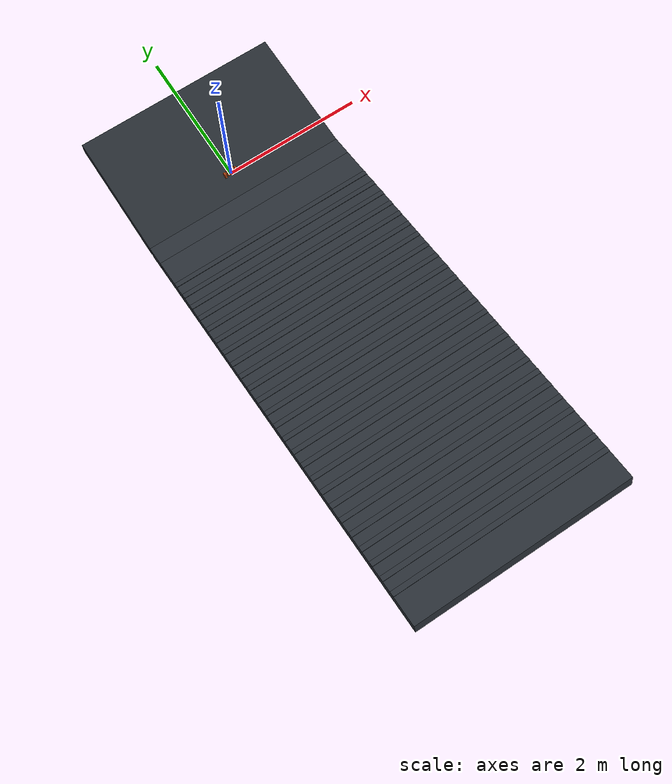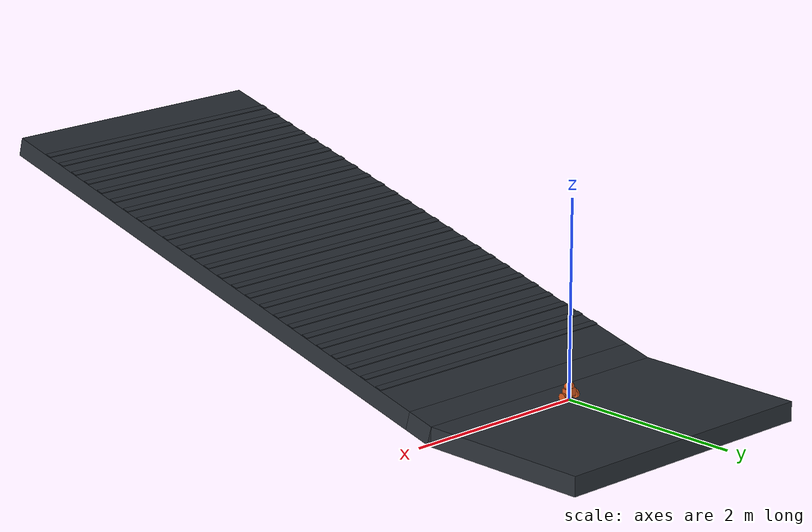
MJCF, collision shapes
<mujoco model="Stage4B rtrain_067_p15p0">
  <compiler angle="radian" meshdir="../../../../assets/upstream_local" />
  <option timestep="0.001" integrator="implicitfast" gravity="0 0 -9.81" />
  <statistic center="0 0 0.05" extent="0.28" />
  <default>
    <default class="visual">
      <geom contype="0" conaffinity="0" group="2" />
    </default>
    <default class="collision">
      <geom group="3" rgba="0.85 0.35 0.12 0.25" solref="0.005 1" solimp="0.9 0.95 0.001" />
    </default>
  </default>
  <asset>
    <texture name="ground_tex" type="2d" builtin="checker" rgb1="0.22 0.25 0.28" rgb2="0.12 0.14 0.16" width="256" height="256" />
    <material name="ground_mat" texture="ground_tex" texrepeat="4 4" reflectance="0.15" />
    <mesh name="main_frame_mesh" file="main_frame.stl" scale="0.001 0.001 0.001" />
    <mesh name="wheel_base_mesh" file="wheel_base.stl" scale="0.001 0.001 0.001" />
    <mesh name="cover_mesh" file="cover.stl" scale="0.001 0.001 0.001" />
    <mesh name="motor_left_mesh" file="motor_left.stl" scale="0.001 0.001 0.001" />
    <mesh name="motor_right_mesh" file="motor_right.stl" scale="0.001 0.001 0.001" />
    <mesh name="mc33926_mesh" file="mc33926.stl" scale="0.001 0.001 0.001" />
    <mesh name="wheel_mesh" file="wheel.stl" scale="0.001 0.001 0.001" />
    <mesh name="adapter_left_mesh" file="adapter_left.stl" scale="0.001 0.001 0.001" />
    <mesh name="adapter_right_mesh" file="adapter_right.stl" scale="0.001 0.001 0.001" />
  </asset>
  <worldbody>
    <light pos="0 -0.5 0.8" dir="0 0.6 -1" diffuse="0.8 0.8 0.8" />
    <geom name="terrain_flat" type="box" pos="0 0.575 -0.1" size="1.5 0.925 0.1" material="ground_mat" friction="0.96340332 0.005 0.0001" condim="3" />
    <geom name="terrain_transition" type="box" pos="0 -0.520770778454 -0.0577697258635" euler="-0.261799387799 0 0" size="1.5 0.15 0.1" material="ground_mat" friction="0.96340332 0.005 0.0001" condim="3" />
    <geom name="terrain_constant_grade" type="box" pos="0 -3.56343713126 0.757510266209" euler="-0.261799387799 0 0" size="1.5 3 0.1" material="ground_mat" friction="0.96340332 0.005 0.0001" condim="3" />
    <geom name="terrain_rough_00" type="box" pos="0 -1.0732920456 0.198414815964" euler="-0.261799387799 0 0" size="1.5 0.0360339230765 0.00445223848454" material="ground_mat" friction="0.96340332 0.005 0.0001" condim="3" />
    <geom name="terrain_rough_01" type="box" pos="0 -1.27901929222 0.253539265555" euler="-0.261799387799 0 0" size="1.5 0.0360339230765 0.00445223848454" material="ground_mat" friction="0.96340332 0.005 0.0001" condim="3" />
    <geom name="terrain_rough_02" type="box" pos="0 -1.48474653883 0.308663715146" euler="-0.261799387799 0 0" size="1.5 0.0360339230765 0.00445223848454" material="ground_mat" friction="0.96340332 0.005 0.0001" condim="3" />
    <geom name="terrain_rough_03" type="box" pos="0 -1.69047378544 0.363788164737" euler="-0.261799387799 0 0" size="1.5 0.0360339230765 0.00445223848454" material="ground_mat" friction="0.96340332 0.005 0.0001" condim="3" />
    <geom name="terrain_rough_04" type="box" pos="0 -1.89620103206 0.418912614328" euler="-0.261799387799 0 0" size="1.5 0.0360339230765 0.00445223848454" material="ground_mat" friction="0.96340332 0.005 0.0001" condim="3" />
    <geom name="terrain_rough_05" type="box" pos="0 -2.10192827867 0.474037063919" euler="-0.261799387799 0 0" size="1.5 0.0360339230765 0.00445223848454" material="ground_mat" friction="0.96340332 0.005 0.0001" condim="3" />
    <geom name="terrain_rough_06" type="box" pos="0 -2.30765552528 0.529161513511" euler="-0.261799387799 0 0" size="1.5 0.0360339230765 0.00445223848454" material="ground_mat" friction="0.96340332 0.005 0.0001" condim="3" />
    <geom name="terrain_rough_07" type="box" pos="0 -2.5133827719 0.584285963102" euler="-0.261799387799 0 0" size="1.5 0.0360339230765 0.00445223848454" material="ground_mat" friction="0.96340332 0.005 0.0001" condim="3" />
    <geom name="terrain_rough_08" type="box" pos="0 -2.71911001851 0.639410412693" euler="-0.261799387799 0 0" size="1.5 0.0360339230765 0.00445223848454" material="ground_mat" friction="0.96340332 0.005 0.0001" condim="3" />
    <geom name="terrain_rough_09" type="box" pos="0 -2.92483726512 0.694534862284" euler="-0.261799387799 0 0" size="1.5 0.0360339230765 0.00445223848454" material="ground_mat" friction="0.96340332 0.005 0.0001" condim="3" />
    <geom name="terrain_rough_10" type="box" pos="0 -3.13056451174 0.749659311875" euler="-0.261799387799 0 0" size="1.5 0.0360339230765 0.00445223848454" material="ground_mat" friction="0.96340332 0.005 0.0001" condim="3" />
    <geom name="terrain_rough_11" type="box" pos="0 -3.33629175835 0.804783761466" euler="-0.261799387799 0 0" size="1.5 0.0360339230765 0.00445223848454" material="ground_mat" friction="0.96340332 0.005 0.0001" condim="3" />
    <geom name="terrain_rough_12" type="box" pos="0 -3.54201900496 0.859908211057" euler="-0.261799387799 0 0" size="1.5 0.0360339230765 0.00445223848454" material="ground_mat" friction="0.96340332 0.005 0.0001" condim="3" />
    <geom name="terrain_rough_13" type="box" pos="0 -3.74774625158 0.915032660648" euler="-0.261799387799 0 0" size="1.5 0.0360339230765 0.00445223848454" material="ground_mat" friction="0.96340332 0.005 0.0001" condim="3" />
    <geom name="terrain_rough_14" type="box" pos="0 -3.95347349819 0.970157110239" euler="-0.261799387799 0 0" size="1.5 0.0360339230765 0.00445223848454" material="ground_mat" friction="0.96340332 0.005 0.0001" condim="3" />
    <geom name="terrain_rough_15" type="box" pos="0 -4.1592007448 1.02528155983" euler="-0.261799387799 0 0" size="1.5 0.0360339230765 0.00445223848454" material="ground_mat" friction="0.96340332 0.005 0.0001" condim="3" />
    <geom name="terrain_rough_16" type="box" pos="0 -4.36492799142 1.08040600942" euler="-0.261799387799 0 0" size="1.5 0.0360339230765 0.00445223848454" material="ground_mat" friction="0.96340332 0.005 0.0001" condim="3" />
    <geom name="terrain_rough_17" type="box" pos="0 -4.57065523803 1.13553045901" euler="-0.261799387799 0 0" size="1.5 0.0360339230765 0.00445223848454" material="ground_mat" friction="0.96340332 0.005 0.0001" condim="3" />
    <geom name="terrain_rough_18" type="box" pos="0 -4.77638248464 1.1906549086" euler="-0.261799387799 0 0" size="1.5 0.0360339230765 0.00445223848454" material="ground_mat" friction="0.96340332 0.005 0.0001" condim="3" />
    <geom name="terrain_rough_19" type="box" pos="0 -4.98210973126 1.24577935819" euler="-0.261799387799 0 0" size="1.5 0.0360339230765 0.00445223848454" material="ground_mat" friction="0.96340332 0.005 0.0001" condim="3" />
    <geom name="terrain_rough_20" type="box" pos="0 -5.18783697787 1.30090380779" euler="-0.261799387799 0 0" size="1.5 0.0360339230765 0.00445223848454" material="ground_mat" friction="0.96340332 0.005 0.0001" condim="3" />
    <geom name="terrain_rough_21" type="box" pos="0 -5.39356422448 1.35602825738" euler="-0.261799387799 0 0" size="1.5 0.0360339230765 0.00445223848454" material="ground_mat" friction="0.96340332 0.005 0.0001" condim="3" />
    <geom name="terrain_rough_22" type="box" pos="0 -5.5992914711 1.41115270697" euler="-0.261799387799 0 0" size="1.5 0.0360339230765 0.00445223848454" material="ground_mat" friction="0.96340332 0.005 0.0001" condim="3" />
    <geom name="terrain_rough_23" type="box" pos="0 -5.80501871771 1.46627715656" euler="-0.261799387799 0 0" size="1.5 0.0360339230765 0.00445223848454" material="ground_mat" friction="0.96340332 0.005 0.0001" condim="3" />
    <geom name="terrain_rough_24" type="box" pos="0 -6.01074596432 1.52140160615" euler="-0.261799387799 0 0" size="1.5 0.0360339230765 0.00445223848454" material="ground_mat" friction="0.96340332 0.005 0.0001" condim="3" />
    <body name="chassis" pos="0 0 0.043">
      <freejoint name="root" />
      <inertial pos="0.0001592717873 -0.001394466535 0.03368627387" mass="0.8173706489" fullinertia="0.0009508052638 0.001636345835 0.0009938057434 -1.163464906e-07 -4.840496598e-06 3.454944565e-05" />
      <geom name="main_frame_visual" class="visual" type="mesh" mesh="main_frame_mesh" rgba="0.12 0.42 0.72 1" />
      <geom name="wheel_base_visual" class="visual" type="mesh" mesh="wheel_base_mesh" rgba="0.95 0.50 0.10 1" />
      <geom name="cover_visual" class="visual" type="mesh" mesh="cover_mesh" rgba="0.18 0.72 0.32 0.72" />
      <geom name="motor_left_visual" class="visual" type="mesh" mesh="motor_left_mesh" rgba="0.45 0.47 0.50 1" />
      <geom name="motor_right_visual" class="visual" type="mesh" mesh="motor_right_mesh" rgba="0.45 0.47 0.50 1" />
      <geom name="mc33926_visual" class="visual" type="mesh" mesh="mc33926_mesh" rgba="0.08 0.36 0.18 1" />
      <geom name="battery_1_visual" class="visual" type="box" pos="0 -0.012 0.038" size="0.035 0.007 0.025" rgba="0.15 0.25 0.75 1" />
      <geom name="battery_2_visual" class="visual" type="box" pos="0 0.012 0.038" size="0.035 0.007 0.025" rgba="0.15 0.25 0.75 1" />
      <geom name="electronics_lump_visual" class="visual" type="box" pos="0 -0.024 0.067" size="0.035 0.006 0.0425" rgba="0.10 0.42 0.20 0.65" />
      <geom name="wheel_base_collision" class="collision" type="box" pos="0 0.0005 0.0042" size="0.074 0.0201 0.0198" />
      <geom name="lower_chassis_collision" class="collision" type="box" pos="0.001 -0.0015 0.038" size="0.0595 0.0325 0.038" />
      <geom name="upper_chassis_collision" class="collision" type="capsule" fromto="-0.024 -0.0015 0.096 0.026 -0.0015 0.096" size="0.033" />
      <site name="imu_site" type="box" pos="0 0 0.020" quat="1 0 0 0" size="0.004 0.003 0.001" rgba="1 0.15 0.05 1" />
      <body name="left_wheel" pos="-0.0885 0 0">
        <joint name="left_wheel_hinge" type="hinge" axis="1 0 0" damping="0.002" frictionloss="0.002" />
        <inertial pos="0.001407549168 -2.310217342e-08 4.024972882e-05" mass="0.1051" fullinertia="8.559060347e-05 4.760138372e-05 4.763051958e-05 2.677568832e-11 -3.525425309e-08 -1.463149106e-11" />
        <geom name="left_wheel_visual" class="visual" type="mesh" mesh="wheel_mesh" rgba="0.04 0.05 0.06 1" />
        <geom name="left_adapter_visual" class="visual" type="mesh" mesh="adapter_left_mesh" rgba="0.12 0.48 0.82 1" />
        <geom name="left_wheel_collision" class="collision" type="cylinder" size="0.042 0.012" quat="0.7071067812 0 0.7071067812 0" friction="0.96340332 0.005 0.0001" />
      </body>
      <body name="right_wheel" pos="0.0885 0 0">
        <joint name="right_wheel_hinge" type="hinge" axis="1 0 0" damping="0.002" frictionloss="0.002" />
        <inertial pos="-0.001407437868 -2.310217342e-08 -4.019113045e-05" mass="0.1051" fullinertia="8.559060397e-05 4.760141714e-05 4.763055251e-05 -2.601653908e-11 -3.526339188e-08 1.57007511e-11" />
        <geom name="right_wheel_visual" class="visual" type="mesh" mesh="wheel_mesh" rgba="0.04 0.05 0.06 1" />
        <geom name="right_adapter_visual" class="visual" type="mesh" mesh="adapter_right_mesh" rgba="0.12 0.48 0.82 1" />
        <geom name="right_wheel_collision" class="collision" type="cylinder" size="0.042 0.012" quat="0.7071067812 0 0.7071067812 0" friction="0.96340332 0.005 0.0001" />
      </body>
    </body>
  </worldbody>
  <actuator>
    <motor name="left_wheel_torque" joint="left_wheel_hinge" gear="1" ctrllimited="true" ctrlrange="-0.63 0.63" forcelimited="true" forcerange="-0.63 0.63" />
    <motor name="right_wheel_torque" joint="right_wheel_hinge" gear="1" ctrllimited="true" ctrlrange="-0.63 0.63" forcelimited="true" forcerange="-0.63 0.63" />
  </actuator>
  <sensor>
    <accelerometer name="imu_accelerometer" site="imu_site" />
    <gyro name="imu_gyro" site="imu_site" />
    <jointpos name="left_wheel_angle" joint="left_wheel_hinge" />
    <jointpos name="right_wheel_angle" joint="right_wheel_hinge" />
  </sensor>
  <keyframe>
    <key name="upright" qpos="0 0 0.043 1 0 0 0 0 0" />
  </keyframe>
</mujoco>
